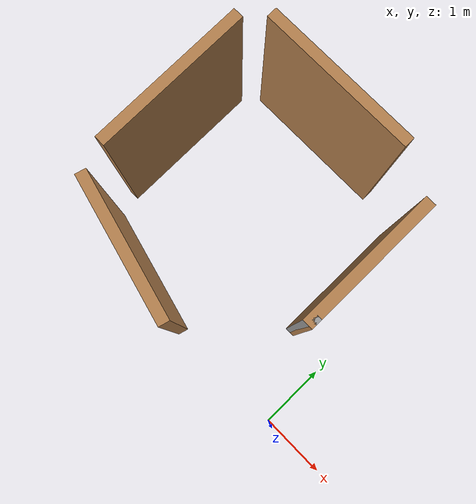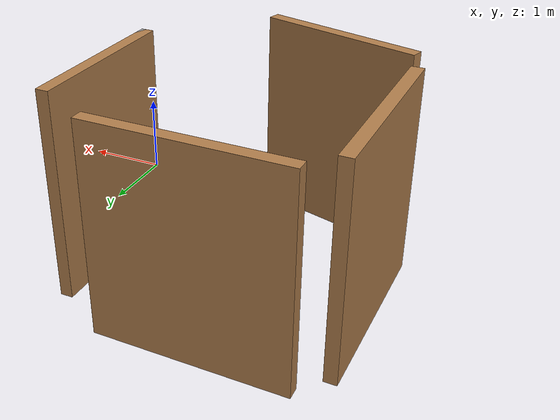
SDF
<?xml version='1.0'?>
<sdf version='1.5'>
  <model name='obs1'>
    <pose frame=''>-2.27011 1.73799 0 0 -0 0</pose>
    <link name='Wall_10'>
      <collision name='Wall_10_Collision'>
        <geometry>
          <box>
            <size>2 0.15 2.5</size>
          </box>
        </geometry>
        <pose frame=''>0 0 1.25 0 -0 0</pose>
      </collision>
      <visual name='Wall_10_Visual'>
        <pose frame=''>0 0 1.25 0 -0 0</pose>
        <geometry>
          <box>
            <size>2 0.15 2.5</size>
          </box>
        </geometry>
        <material>
          <script>
            <uri>file://media/materials/scripts/gazebo.material</uri>
            <name>Gazebo/Wood</name>
          </script>
          <ambient>1 1 1 1</ambient>
        </material>
      </visual>
      <pose frame=''>-0.505188 -1.46687 0 0 0 -0.261799</pose>
    </link>
    <link name='Wall_2'>
      <collision name='Wall_2_Collision'>
        <geometry>
          <box>
            <size>2.25 0.15 2.5</size>
          </box>
        </geometry>
        <pose frame=''>0 0 1.25 0 -0 0</pose>
      </collision>
      <visual name='Wall_2_Visual'>
        <pose frame=''>0 0 1.25 0 -0 0</pose>
        <geometry>
          <box>
            <size>2.25 0.15 2.5</size>
          </box>
        </geometry>
        <material>
          <script>
            <uri>file://media/materials/scripts/gazebo.material</uri>
            <name>Gazebo/Wood</name>
          </script>
          <ambient>1 1 1 1</ambient>
        </material>
      </visual>
      <pose frame=''>-1.58039 0.313508 0 0 0 -1.5708</pose>
    </link>
    <link name='Wall_5'>
      <collision name='Wall_5_Collision'>
        <geometry>
          <box>
            <size>2.25 0.15 2.5</size>
          </box>
        </geometry>
        <pose frame=''>0 0 1.25 0 -0 0</pose>
      </collision>
      <visual name='Wall_5_Visual'>
        <pose frame=''>0 0 1.25 0 -0 0</pose>
        <geometry>
          <box>
            <size>2.25 0.15 2.5</size>
          </box>
        </geometry>
        <material>
          <script>
            <uri>file://media/materials/scripts/gazebo.material</uri>
            <name>Gazebo/Wood</name>
          </script>
          <ambient>1 1 1 1</ambient>
        </material>
      </visual>
      <pose frame=''>-0.185262 1.72313 0 0 -0 0</pose>
    </link>
    <link name='Wall_7'>
      <collision name='Wall_7_Collision'>
        <geometry>
          <box>
            <size>2 0.15 2.5</size>
          </box>
        </geometry>
        <pose frame=''>0 0 1.25 0 -0 0</pose>
      </collision>
      <visual name='Wall_7_Visual'>
        <pose frame=''>0 0 1.25 0 -0 0</pose>
        <geometry>
          <box>
            <size>2 0.15 2.5</size>
          </box>
        </geometry>
        <material>
          <script>
            <uri>file://media/materials/scripts/gazebo.material</uri>
            <name>Gazebo/Wood</name>
          </script>
          <ambient>1 1 1 1</ambient>
        </material>
      </visual>
      <pose frame=''>1.58039 0.398833 0 0 0 -1.5708</pose>
    </link>
    <link name='Wall_8'>
      <collision name='Wall_8_Collision'>
        <geometry>
          <box>
            <size>0.15 0.15 2.5</size>
          </box>
        </geometry>
        <pose frame=''>0 0 1.25 0 -0 0</pose>
      </collision>
      <visual name='Wall_8_Visual'>
        <pose frame=''>0 0 1.25 0 -0 0</pose>
        <geometry>
          <box>
            <size>0.15 0.15 2.5</size>
          </box>
        </geometry>
        <material>
          <script>
            <uri>file://media/materials/scripts/gazebo.material</uri>
            <name>Gazebo/Grey</name>
          </script>
          <ambient>1 1 1 1</ambient>
        </material>
      </visual>
      <pose frame=''>1.58039 -0.526167 0 0 -0 0</pose>
    </link>
    <static>1</static>
  </model>
</sdf>
